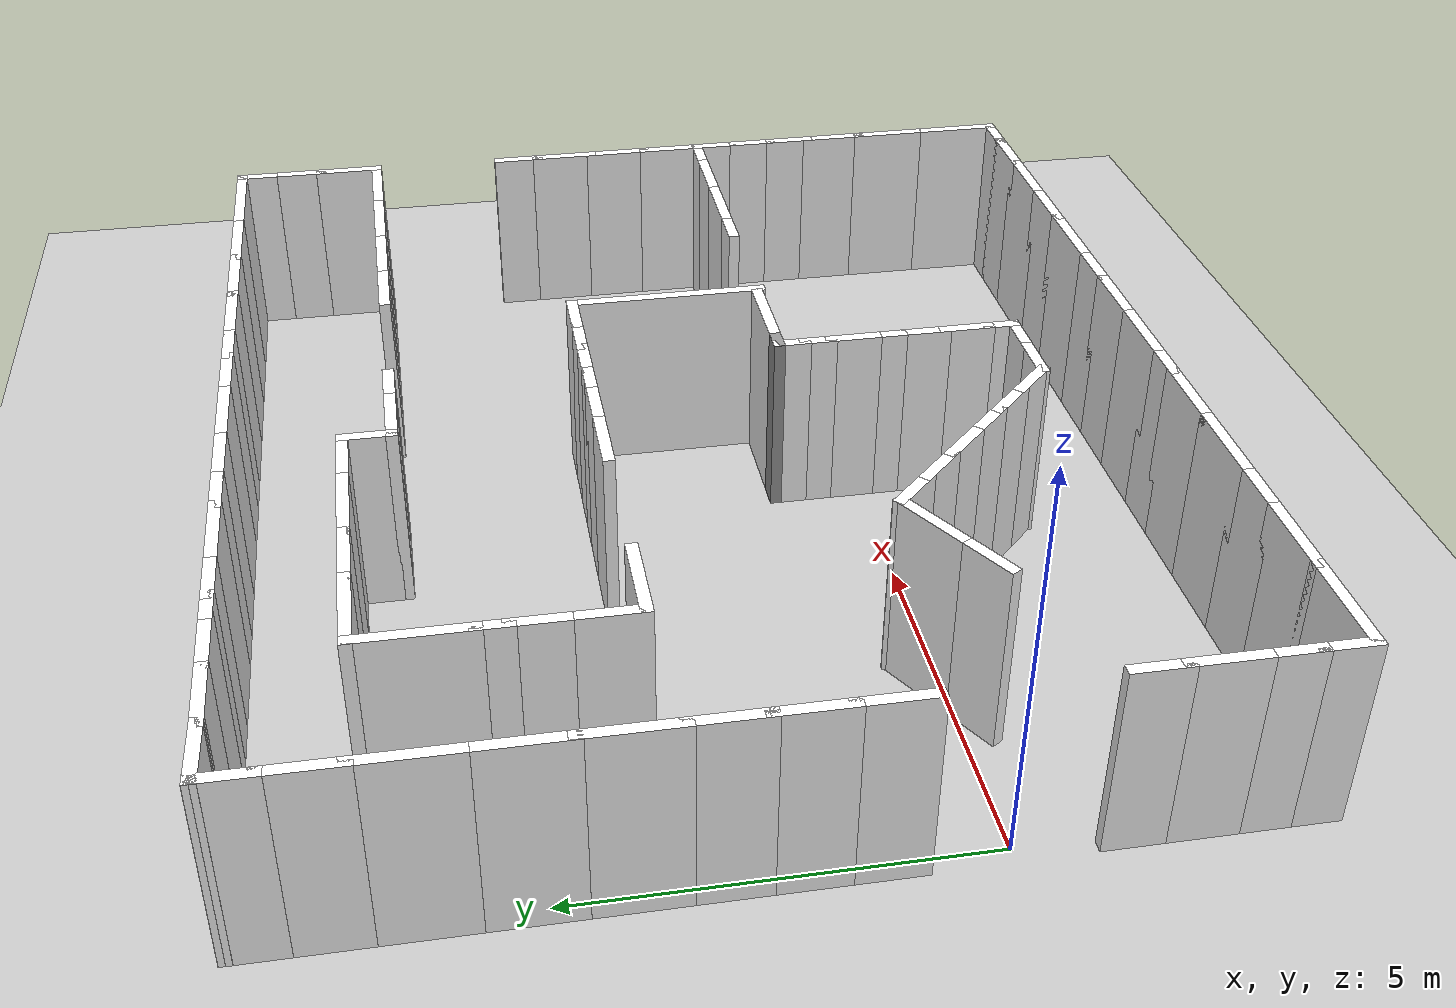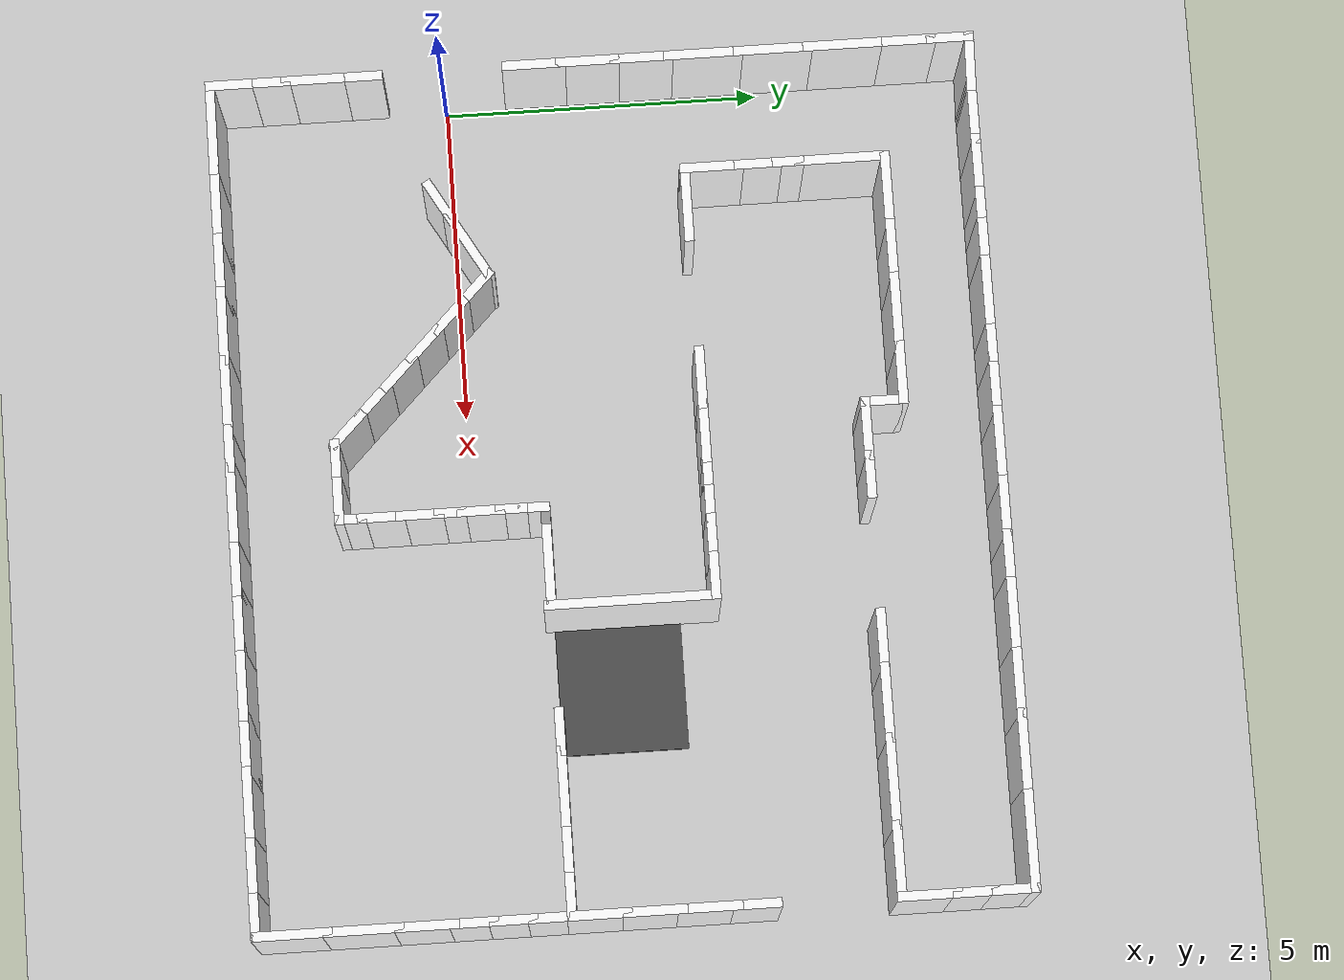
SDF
<sdf version="1.6">
 <world name="default">
  <model name="obstacles">
   <pose>6.59109 2.33085 0 0 -0 0</pose>
   <link name="Wall_11">
    <collision name="Wall_11_Collision">
     <geometry><box><size>0.75 0.15 2.5</size></box></geometry>
     <pose>0 0 1.25 0 -0 0</pose>
    </collision>
    <visual name="Wall_11_Visual">
     <pose>0 0 1.25 0 -0 0</pose>
     <geometry><box><size>0.75 0.15 2.5</size></box></geometry>
     <material>
      <script><uri>file://media/materials/scripts/gazebo.material</uri><name>Gazebo/Texture1</name></script>
      <ambient>1 1 1 1</ambient>
     </material>
    </visual>
    <pose>-6.70688 -3.64234 0 0 0 -1.5708</pose>
   </link>
   <link name="Wall_12">
    <collision name="Wall_12_Collision">
     <geometry><box><size>1 0.15 2.5</size></box></geometry>
     <pose>0 0 1.25 0 -0 0</pose>
    </collision>
    <visual name="Wall_12_Visual">
     <pose>0 0 1.25 0 -0 0</pose>
     <geometry><box><size>1 0.15 2.5</size></box></geometry>
     <material>
      <script><uri>file://media/materials/scripts/gazebo.material</uri><name>Gazebo/Texture2</name></script>
      <ambient>1 1 1 1</ambient>
     </material>
    </visual>
    <pose>-6.70688 -4.36734 0 0 0 -1.5708</pose>
   </link>
   <link name="Wall_13">
    <collision name="Wall_13_Collision">
     <geometry><box><size>0.75 0.15 2.5</size></box></geometry>
     <pose>0 0 1.25 0 -0 0</pose>
    </collision>
    <visual name="Wall_13_Visual">
     <pose>0 0 1.25 0 -0 0</pose>
     <geometry><box><size>0.75 0.15 2.5</size></box></geometry>
     <material>
      <script><uri>file://media/materials/scripts/gazebo.material</uri><name>Gazebo/Texture3</name></script>
      <ambient>1 1 1 1</ambient>
     </material>
    </visual>
    <pose>-6.70688 -5.09234 0 0 0 -1.5708</pose>
   </link>
   <link name="Wall_14">
    <collision name="Wall_14_Collision">
     <geometry><box><size>0.75 0.15 2.5</size></box></geometry>
     <pose>0 0 1.25 0 -0 0</pose>
    </collision>
    <visual name="Wall_14_Visual">
     <pose>0 0 1.25 0 -0 0</pose>
     <geometry><box><size>0.75 0.15 2.5</size></box></geometry>
     <material>
      <script><uri>file://media/materials/scripts/gazebo.material</uri><name>Gazebo/Texture4</name></script>
      <ambient>1 1 1 1</ambient>
     </material>
    </visual>
    <pose>-6.70688 -5.69234 0 0 0 -1.5708</pose>
   </link>
   <link name="Wall_15">
    <collision name="Wall_15_Collision">
     <geometry><box><size>1.5 0.15 2.5</size></box></geometry>
     <pose>0 0 1.25 0 -0 0</pose>
    </collision>
    <visual name="Wall_15_Visual">
     <pose>0 0 1.25 0 -0 0</pose>
     <geometry><box><size>1.5 0.15 2.5</size></box></geometry>
     <material>
      <script><uri>file://media/materials/scripts/gazebo.material</uri><name>Gazebo/Texture5</name></script>
      <ambient>1 1 1 1</ambient>
     </material>
    </visual>
    <pose>-6.03188 -5.99234 0 0 -0 0</pose>
   </link>
   <link name="Wall_16">
    <collision name="Wall_16_Collision">
     <geometry><box><size>1.25 0.15 2.5</size></box></geometry>
     <pose>0 0 1.25 0 -0 0</pose>
    </collision>
    <visual name="Wall_16_Visual">
     <pose>0 0 1.25 0 -0 0</pose>
     <geometry><box><size>1.25 0.15 2.5</size></box></geometry>
     <material>
      <script><uri>file://media/materials/scripts/gazebo.material</uri><name>Gazebo/Texture6</name></script>
      <ambient>1 1 1 1</ambient>
     </material>
    </visual>
    <pose>-4.80688 -5.99234 0 0 -0 0</pose>
   </link>
   <link name="Wall_17">
    <collision name="Wall_17_Collision">
     <geometry><box><size>1 0.15 2.5</size></box></geometry>
     <pose>0 0 1.25 0 -0 0</pose>
    </collision>
    <visual name="Wall_17_Visual">
     <pose>0 0 1.25 0 -0 0</pose>
     <geometry><box><size>1 0.15 2.5</size></box></geometry>
     <material>
      <script><uri>file://media/materials/scripts/gazebo.material</uri><name>Gazebo/Texture7</name></script>
      <ambient>1 1 1 1</ambient>
     </material>
    </visual>
    <pose>-3.83188 -5.99234 0 0 -0 0</pose>
   </link>
   <link name="Wall_18">
    <collision name="Wall_18_Collision">
     <geometry><box><size>1.25 0.15 2.5</size></box></geometry>
     <pose>0 0 1.25 0 -0 0</pose>
    </collision>
    <visual name="Wall_18_Visual">
     <pose>0 0 1.25 0 -0 0</pose>
     <geometry><box><size>1.25 0.15 2.5</size></box></geometry>
     <material>
      <script><uri>file://media/materials/scripts/gazebo.material</uri><name>Gazebo/Texture8</name></script>
      <ambient>1 1 1 1</ambient>
     </material>
    </visual>
    <pose>-2.85688 -5.99234 0 0 -0 0</pose>
   </link>
   <link name="Wall_19">
    <collision name="Wall_19_Collision">
     <geometry><box><size>1.25 0.15 2.5</size></box></geometry>
     <pose>0 0 1.25 0 -0 0</pose>
    </collision>
    <visual name="Wall_19_Visual">
     <pose>0 0 1.25 0 -0 0</pose>
     <geometry><box><size>1.25 0.15 2.5</size></box></geometry>
     <material>
      <script><uri>file://media/materials/scripts/gazebo.material</uri><name>Gazebo/Texture9</name></script>
      <ambient>1 1 1 1</ambient>
     </material>
    </visual>
    <pose>-1.75688 -5.99234 0 0 -0 0</pose>
   </link>
   <link name="Wall_2">
    <collision name="Wall_2_Collision">
     <geometry><box><size>0.75 0.15 2.5</size></box></geometry>
     <pose>0 0 1.25 0 -0 0</pose>
    </collision>
    <visual name="Wall_2_Visual">
     <pose>0 0 1.25 0 -0 0</pose>
     <geometry><box><size>0.75 0.15 2.5</size></box></geometry>
     <material>
      <script><uri>file://media/materials/scripts/gazebo.material</uri><name>Gazebo/Texture10</name></script>
      <ambient>1 1 1 1</ambient>
     </material>
    </visual>
    <pose>-6.72699 5.69035 0 0 0 -1.5708</pose>
   </link>
   <link name="Wall_20">
    <collision name="Wall_20_Collision">
     <geometry><box><size>0.75 0.15 2.5</size></box></geometry>
     <pose>0 0 1.25 0 -0 0</pose>
    </collision>
    <visual name="Wall_20_Visual">
     <pose>0 0 1.25 0 -0 0</pose>
     <geometry><box><size>0.75 0.15 2.5</size></box></geometry>
     <material>
      <script><uri>file://media/materials/scripts/gazebo.material</uri><name>Gazebo/Texture11</name></script>
      <ambient>1 1 1 1</ambient>
     </material>
    </visual>
    <pose>-0.90688 -5.99234 0 0 -0 0</pose>
   </link>
   <link name="Wall_202">
    <collision name="Wall_202_Collision">
     <geometry><box><size>1.25 0.15 2.5</size></box></geometry>
     <pose>0 0 1.25 0 -0 0</pose>
    </collision>
    <visual name="Wall_202_Visual">
     <pose>0 0 1.25 0 -0 0</pose>
     <geometry><box><size>1.25 0.15 2.5</size></box></geometry>
     <material>
      <script><uri>file://media/materials/scripts/gazebo.material</uri><name>Gazebo/Texture12</name></script>
      <ambient>1 1 1 1</ambient>
     </material>
    </visual>
    <pose>6.17899 3.91866 0 0 -0 3.14159</pose>
   </link>
   <link name="Wall_203">
    <collision name="Wall_203_Collision">
     <geometry><box><size>1.5 0.15 2.5</size></box></geometry>
     <pose>0 0 1.25 0 -0 0</pose>
    </collision>
    <visual name="Wall_203_Visual">
     <pose>0 0 1.25 0 -0 0</pose>
     <geometry><box><size>1.5 0.15 2.5</size></box></geometry>
     <material>
      <script><uri>file://media/materials/scripts/gazebo.material</uri><name>Gazebo/Texture13</name></script>
      <ambient>1 1 1 1</ambient>
     </material>
    </visual>
    <pose>4.95399 3.91866 0 0 -0 3.14159</pose>
   </link>
   <link name="Wall_204">
    <collision name="Wall_204_Collision">
     <geometry><box><size>1.25 0.15 2.5</size></box></geometry>
     <pose>0 0 1.25 0 -0 0</pose>
    </collision>
    <visual name="Wall_204_Visual">
     <pose>0 0 1.25 0 -0 0</pose>
     <geometry><box><size>1.25 0.15 2.5</size></box></geometry>
     <material>
      <script><uri>file://media/materials/scripts/gazebo.material</uri><name>Gazebo/Texture14</name></script>
      <ambient>1 1 1 1</ambient>
     </material>
    </visual>
    <pose>3.72899 3.91866 0 0 -0 3.14159</pose>
   </link>
   <link name="Wall_205">
    <collision name="Wall_205_Collision">
     <geometry><box><size>1 0.15 2.5</size></box></geometry>
     <pose>0 0 1.25 0 -0 0</pose>
    </collision>
    <visual name="Wall_205_Visual">
     <pose>0 0 1.25 0 -0 0</pose>
     <geometry><box><size>1 0.15 2.5</size></box></geometry>
     <material>
      <script><uri>file://media/materials/scripts/gazebo.material</uri><name>Gazebo/Texture15</name></script>
      <ambient>1 1 1 1</ambient>
     </material>
    </visual>
    <pose>2.75399 3.91866 0 0 -0 3.14159</pose>
   </link>
   <link name="Wall_207">
    <collision name="Wall_207_Collision">
     <geometry><box><size>0.75 0.15 2.5</size></box></geometry>
     <pose>0 0 1.25 0 -0 0</pose>
    </collision>
    <visual name="Wall_207_Visual">
     <pose>0 0 1.25 0 -0 0</pose>
     <geometry><box><size>0.75 0.15 2.5</size></box></geometry>
     <material>
      <script><uri>file://media/materials/scripts/gazebo.material</uri><name>Gazebo/Texture16</name></script>
      <ambient>1 1 1 1</ambient>
     </material>
    </visual>
    <pose>0.155851 3.92543 0 0 -0 3.14159</pose>
   </link>
   <link name="Wall_208">
    <collision name="Wall_208_Collision">
     <geometry><box><size>1 0.15 2.5</size></box></geometry>
     <pose>0 0 1.25 0 -0 0</pose>
    </collision>
    <visual name="Wall_208_Visual">
     <pose>0 0 1.25 0 -0 0</pose>
     <geometry><box><size>1 0.15 2.5</size></box></geometry>
     <material>
      <script><uri>file://media/materials/scripts/gazebo.material</uri><name>Gazebo/Texture17</name></script>
      <ambient>1 1 1 1</ambient>
     </material>
    </visual>
    <pose>-0.569149 3.92543 0 0 -0 3.14159</pose>
   </link>
   <link name="Wall_209">
    <collision name="Wall_209_Collision">
     <geometry><box><size>0.75 0.15 2.5</size></box></geometry>
     <pose>0 0 1.25 0 -0 0</pose>
    </collision>
    <visual name="Wall_209_Visual">
     <pose>0 0 1.25 0 -0 0</pose>
     <geometry><box><size>0.75 0.15 2.5</size></box></geometry>
     <material>
      <script><uri>file://media/materials/scripts/gazebo.material</uri><name>Gazebo/Texture18</name></script>
      <ambient>1 1 1 1</ambient>
     </material>
    </visual>
    <pose>-0.994149 4.22543 0 0 -0 1.5708</pose>
   </link>
   <link name="Wall_21">
    <collision name="Wall_21_Collision">
     <geometry><box><size>1.25 0.15 2.5</size></box></geometry>
     <pose>0 0 1.25 0 -0 0</pose>
    </collision>
    <visual name="Wall_21_Visual">
     <pose>0 0 1.25 0 -0 0</pose>
     <geometry><box><size>1.25 0.15 2.5</size></box></geometry>
     <material>
      <script><uri>file://media/materials/scripts/gazebo.material</uri><name>Gazebo/Texture19</name></script>
      <ambient>1 1 1 1</ambient>
     </material>
    </visual>
    <pose>-0.05688 -5.99234 0 0 -0 0</pose>
   </link>
   <link name="Wall_210">
    <collision name="Wall_210_Collision">
     <geometry><box><size>1 0.15 2.5</size></box></geometry>
     <pose>0 0 1.25 0 -0 0</pose>
    </collision>
    <visual name="Wall_210_Visual">
     <pose>0 0 1.25 0 -0 0</pose>
     <geometry><box><size>1 0.15 2.5</size></box></geometry>
     <material>
      <script><uri>file://media/materials/scripts/gazebo.material</uri><name>Gazebo/Texture20</name></script>
      <ambient>1 1 1 1</ambient>
     </material>
    </visual>
    <pose>-1.41915 4.52543 0 0 -0 3.14159</pose>
   </link>
   <link name="Wall_211">
    <collision name="Wall_211_Collision">
     <geometry><box><size>1.25 0.15 2.5</size></box></geometry>
     <pose>0 0 1.25 0 -0 0</pose>
    </collision>
    <visual name="Wall_211_Visual">
     <pose>0 0 1.25 0 -0 0</pose>
     <geometry><box><size>1.25 0.15 2.5</size></box></geometry>
     <material>
      <script><uri>file://media/materials/scripts/gazebo.material</uri><name>Gazebo/Texture21</name></script>
      <ambient>1 1 1 1</ambient>
     </material>
    </visual>
    <pose>-2.39415 4.52543 0 0 -0 3.14159</pose>
   </link>
   <link name="Wall_212">
    <collision name="Wall_212_Collision">
     <geometry><box><size>1 0.15 2.5</size></box></geometry>
     <pose>0 0 1.25 0 -0 0</pose>
    </collision>
    <visual name="Wall_212_Visual">
     <pose>0 0 1.25 0 -0 0</pose>
     <geometry><box><size>1 0.15 2.5</size></box></geometry>
     <material>
      <script><uri>file://media/materials/scripts/gazebo.material</uri><name>Gazebo/Texture22</name></script>
      <ambient>1 1 1 1</ambient>
     </material>
    </visual>
    <pose>-3.36915 4.52543 0 0 -0 3.14159</pose>
   </link>
   <link name="Wall_213">
    <collision name="Wall_213_Collision">
     <geometry><box><size>1.25 0.15 2.5</size></box></geometry>
     <pose>0 0 1.25 0 -0 0</pose>
    </collision>
    <visual name="Wall_213_Visual">
     <pose>0 0 1.25 0 -0 0</pose>
     <geometry><box><size>1.25 0.15 2.5</size></box></geometry>
     <material>
      <script><uri>file://media/materials/scripts/gazebo.material</uri><name>Gazebo/Texture23</name></script>
      <ambient>1 1 1 1</ambient>
     </material>
    </visual>
    <pose>-4.34415 4.52543 0 0 -0 3.14159</pose>
   </link>
   <link name="Wall_214">
    <collision name="Wall_214_Collision">
     <geometry><box><size>1.5 0.15 2.5</size></box></geometry>
     <pose>0 0 1.25 0 -0 0</pose>
    </collision>
    <visual name="Wall_214_Visual">
     <pose>0 0 1.25 0 -0 0</pose>
     <geometry><box><size>1.5 0.15 2.5</size></box></geometry>
     <material>
      <script><uri>file://media/materials/scripts/gazebo.material</uri><name>Gazebo/Texture24</name></script>
      <ambient>1 1 1 1</ambient>
     </material>
    </visual>
    <pose>-4.89415 3.85043 0 0 0 -1.5708</pose>
   </link>
   <link name="Wall_215">
    <collision name="Wall_215_Collision">
     <geometry><box><size>0.5 0.15 2.5</size></box></geometry>
     <pose>0 0 1.25 0 -0 0</pose>
    </collision>
    <visual name="Wall_215_Visual">
     <pose>0 0 1.25 0 -0 0</pose>
     <geometry><box><size>0.5 0.15 2.5</size></box></geometry>
     <material>
      <script><uri>file://media/materials/scripts/gazebo.material</uri><name>Gazebo/Texture25</name></script>
      <ambient>1 1 1 1</ambient>
     </material>
    </visual>
    <pose>-4.89415 3.00043 0 0 0 -1.5708</pose>
   </link>
   <link name="Wall_216">
    <collision name="Wall_216_Collision">
     <geometry><box><size>0.75 0.15 2.5</size></box></geometry>
     <pose>0 0 1.25 0 -0 0</pose>
    </collision>
    <visual name="Wall_216_Visual">
     <pose>0 0 1.25 0 -0 0</pose>
     <geometry><box><size>0.75 0.15 2.5</size></box></geometry>
     <material>
      <script><uri>file://media/materials/scripts/gazebo.material</uri><name>Gazebo/Texture26</name></script>
      <ambient>1 1 1 1</ambient>
     </material>
    </visual>
    <pose>-4.89415 2.52543 0 0 0 -1.5708</pose>
   </link>
   <link name="Wall_217">
    <collision name="Wall_217_Collision">
     <geometry><box><size>1 0.15 2.5</size></box></geometry>
     <pose>0 0 1.25 0 -0 0</pose>
    </collision>
    <visual name="Wall_217_Visual">
     <pose>0 0 1.25 0 -0 0</pose>
     <geometry><box><size>1 0.15 2.5</size></box></geometry>
     <material>
      <script><uri>file://media/materials/scripts/gazebo.material</uri><name>Gazebo/Texture27</name></script>
      <ambient>1 1 1 1</ambient>
     </material>
    </visual>
    <pose>-4.89415 1.80043 0 0 0 -1.5708</pose>
   </link>
   <link name="Wall_218">
    <collision name="Wall_218_Collision">
     <geometry><box><size>1.25 0.15 2.5</size></box></geometry>
     <pose>0 0 1.25 0 -0 0</pose>
    </collision>
    <visual name="Wall_218_Visual">
     <pose>0 0 1.25 0 -0 0</pose>
     <geometry><box><size>1.25 0.15 2.5</size></box></geometry>
     <material>
      <script><uri>file://media/materials/scripts/gazebo.material</uri><name>Gazebo/Texture28</name></script>
      <ambient>1 1 1 1</ambient>
     </material>
    </visual>
    <pose>-4.34415 1.37543 0 0 -0 0</pose>
   </link>
   <link name="Wall_22">
    <collision name="Wall_22_Collision">
     <geometry><box><size>1 0.15 2.5</size></box></geometry>
     <pose>0 0 1.25 0 -0 0</pose>
    </collision>
    <visual name="Wall_22_Visual">
     <pose>0 0 1.25 0 -0 0</pose>
     <geometry><box><size>1 0.15 2.5</size></box></geometry>
     <material>
      <script><uri>file://media/materials/scripts/gazebo.material</uri><name>Gazebo/Texture29</name></script>
      <ambient>1 1 1 1</ambient>
     </material>
    </visual>
    <pose>0.91812 -5.99234 0 0 -0 0</pose>
   </link>
   <link name="Wall_220">
    <collision name="Wall_220_Collision">
     <geometry><box><size>1 0.15 2.5</size></box></geometry>
     <pose>0 0 1.25 0 -0 0</pose>
    </collision>
    <visual name="Wall_220_Visual">
     <pose>0 0 1.25 0 -0 0</pose>
     <geometry><box><size>1 0.15 2.5</size></box></geometry>
     <material>
      <script><uri>file://media/materials/scripts/gazebo.material</uri><name>Gazebo/Texture30</name></script>
      <ambient>1 1 1 1</ambient>
     </material>
    </visual>
    <pose>-1.54786 1.4042 0 0 -0 0</pose>
   </link>
   <link name="Wall_221">
    <collision name="Wall_221_Collision">
     <geometry><box><size>1 0.15 2.5</size></box></geometry>
     <pose>0 0 1.25 0 -0 0</pose>
    </collision>
    <visual name="Wall_221_Visual">
     <pose>0 0 1.25 0 -0 0</pose>
     <geometry><box><size>1 0.15 2.5</size></box></geometry>
     <material>
      <script><uri>file://media/materials/scripts/gazebo.material</uri><name>Gazebo/Texture31</name></script>
      <ambient>1 1 1 1</ambient>
     </material>
    </visual>
    <pose>-0.697863 1.4042 0 0 -0 0</pose>
   </link>
   <link name="Wall_222">
    <collision name="Wall_222_Collision">
     <geometry><box><size>0.5 0.15 2.5</size></box></geometry>
     <pose>0 0 1.25 0 -0 0</pose>
    </collision>
    <visual name="Wall_222_Visual">
     <pose>0 0 1.25 0 -0 0</pose>
     <geometry><box><size>0.5 0.15 2.5</size></box></geometry>
     <material>
      <script><uri>file://media/materials/scripts/gazebo.material</uri><name>Gazebo/Texture32</name></script>
      <ambient>1 1 1 1</ambient>
     </material>
    </visual>
    <pose>-0.097863 1.4042 0 0 -0 0</pose>
   </link>
   <link name="Wall_223">
    <collision name="Wall_223_Collision">
     <geometry><box><size>0.75 0.15 2.5</size></box></geometry>
     <pose>0 0 1.25 0 -0 0</pose>
    </collision>
    <visual name="Wall_223_Visual">
     <pose>0 0 1.25 0 -0 0</pose>
     <geometry><box><size>0.75 0.15 2.5</size></box></geometry>
     <material>
      <script><uri>file://media/materials/scripts/gazebo.material</uri><name>Gazebo/Texture33</name></script>
      <ambient>1 1 1 1</ambient>
     </material>
    </visual>
    <pose>0.377137 1.4042 0 0 -0 0</pose>
   </link>
   <link name="Wall_224">
    <collision name="Wall_224_Collision">
     <geometry><box><size>0.75 0.15 2.5</size></box></geometry>
     <pose>0 0 1.25 0 -0 0</pose>
    </collision>
    <visual name="Wall_224_Visual">
     <pose>0 0 1.25 0 -0 0</pose>
     <geometry><box><size>0.75 0.15 2.5</size></box></geometry>
     <material>
      <script><uri>file://media/materials/scripts/gazebo.material</uri><name>Gazebo/Texture34</name></script>
      <ambient>1 1 1 1</ambient>
     </material>
    </visual>
    <pose>0.977137 1.4042 0 0 -0 0</pose>
   </link>
   <link name="Wall_225">
    <collision name="Wall_225_Collision">
     <geometry><box><size>0.75 0.15 2.5</size></box></geometry>
     <pose>0 0 1.25 0 -0 0</pose>
    </collision>
    <visual name="Wall_225_Visual">
     <pose>0 0 1.25 0 -0 0</pose>
     <geometry><box><size>0.75 0.15 2.5</size></box></geometry>
     <material>
      <script><uri>file://media/materials/scripts/gazebo.material</uri><name>Gazebo/Texture35</name></script>
      <ambient>1 1 1 1</ambient>
     </material>
    </visual>
    <pose>1.57714 1.4042 0 0 -0 0</pose>
   </link>
   <link name="Wall_226">
    <collision name="Wall_226_Collision">
     <geometry><box><size>2.75 0.15 2.5</size></box></geometry>
     <pose>0 0 1.25 0 -0 0</pose>
    </collision>
    <visual name="Wall_226_Visual">
     <pose>0 0 1.25 0 -0 0</pose>
     <geometry><box><size>2.75 0.15 2.5</size></box></geometry>
     <material>
      <script><uri>file://media/materials/scripts/gazebo.material</uri><name>Gazebo/Texture36</name></script>
      <ambient>1 1 1 1</ambient>
     </material>
    </visual>
    <pose>1.87714 0.104195 0 0 0 -1.5708</pose>
   </link>
   <link name="Wall_228">
    <collision name="Wall_228_Collision">
     <geometry><box><size>0.75 0.15 2.5</size></box></geometry>
     <pose>0 0 1.25 0 -0 0</pose>
    </collision>
    <visual name="Wall_228_Visual">
     <pose>0 0 1.25 0 -0 0</pose>
     <geometry><box><size>0.75 0.15 2.5</size></box></geometry>
     <material>
      <script><uri>file://media/materials/scripts/gazebo.material</uri><name>Gazebo/Texture37</name></script>
      <ambient>1 1 1 1</ambient>
     </material>
    </visual>
    <pose>0.031047 -4.34997 0 0 -0 3.14159</pose>
   </link>
   <link name="Wall_229">
    <collision name="Wall_229_Collision">
     <geometry><box><size>0.75 0.15 2.5</size></box></geometry>
     <pose>0 0 1.25 0 -0 0</pose>
    </collision>
    <visual name="Wall_229_Visual">
     <pose>0 0 1.25 0 -0 0</pose>
     <geometry><box><size>0.75 0.15 2.5</size></box></geometry>
     <material>
      <script><uri>file://media/materials/scripts/gazebo.material</uri><name>Gazebo/Texture38</name></script>
      <ambient>1 1 1 1</ambient>
     </material>
    </visual>
    <pose>-0.568953 -4.34997 0 0 -0 3.14159</pose>
   </link>
   <link name="Wall_23">
    <collision name="Wall_23_Collision">
     <geometry><box><size>1 0.15 2.5</size></box></geometry>
     <pose>0 0 1.25 0 -0 0</pose>
    </collision>
    <visual name="Wall_23_Visual">
     <pose>0 0 1.25 0 -0 0</pose>
     <geometry><box><size>1 0.15 2.5</size></box></geometry>
     <material>
      <script><uri>file://media/materials/scripts/gazebo.material</uri><name>Gazebo/Texture39</name></script>
      <ambient>1 1 1 1</ambient>
     </material>
    </visual>
    <pose>1.76812 -5.99234 0 0 -0 0</pose>
   </link>
   <link name="Wall_233">
    <collision name="Wall_233_Collision">
     <geometry><box><size>0.75 0.15 2.5</size></box></geometry>
     <pose>0 0 1.25 0 -0 0</pose>
    </collision>
    <visual name="Wall_233_Visual">
     <pose>0 0 1.25 0 -0 0</pose>
     <geometry><box><size>0.75 0.15 2.5</size></box></geometry>
     <material>
      <script><uri>file://media/materials/scripts/gazebo.material</uri><name>Gazebo/Texture40</name></script>
      <ambient>1 1 1 1</ambient>
     </material>
    </visual>
    <pose>-1.08109 -4.13783 0 0 -0 2.35619</pose>
   </link>
   <link name="Wall_234">
    <collision name="Wall_234_Collision">
     <geometry><box><size>0.75 0.15 2.5</size></box></geometry>
     <pose>0 0 1.25 0 -0 0</pose>
    </collision>
    <visual name="Wall_234_Visual">
     <pose>0 0 1.25 0 -0 0</pose>
     <geometry><box><size>0.75 0.15 2.5</size></box></geometry>
     <material>
      <script><uri>file://media/materials/scripts/gazebo.material</uri><name>Gazebo/Texture41</name></script>
      <ambient>1 1 1 1</ambient>
     </material>
    </visual>
    <pose>-1.50535 -3.71357 0 0 -0 2.35619</pose>
   </link>
   <link name="Wall_235">
    <collision name="Wall_235_Collision">
     <geometry><box><size>0.75 0.15 2.5</size></box></geometry>
     <pose>0 0 1.25 0 -0 0</pose>
    </collision>
    <visual name="Wall_235_Visual">
     <pose>0 0 1.25 0 -0 0</pose>
     <geometry><box><size>0.75 0.15 2.5</size></box></geometry>
     <material>
      <script><uri>file://media/materials/scripts/gazebo.material</uri><name>Gazebo/Texture42</name></script>
      <ambient>1 1 1 1</ambient>
     </material>
    </visual>
    <pose>-1.92961 -3.28931 0 0 -0 2.35619</pose>
   </link>
   <link name="Wall_236">
    <collision name="Wall_236_Collision">
     <geometry><box><size>0.75 0.15 2.5</size></box></geometry>
     <pose>0 0 1.25 0 -0 0</pose>
    </collision>
    <visual name="Wall_236_Visual">
     <pose>0 0 1.25 0 -0 0</pose>
     <geometry><box><size>0.75 0.15 2.5</size></box></geometry>
     <material>
      <script><uri>file://media/materials/scripts/gazebo.material</uri><name>Gazebo/Texture43</name></script>
      <ambient>1 1 1 1</ambient>
     </material>
    </visual>
    <pose>-2.35388 -2.86504 0 0 -0 2.35619</pose>
   </link>
   <link name="Wall_237">
    <collision name="Wall_237_Collision">
     <geometry><box><size>0.75 0.15 2.5</size></box></geometry>
     <pose>0 0 1.25 0 -0 0</pose>
    </collision>
    <visual name="Wall_237_Visual">
     <pose>0 0 1.25 0 -0 0</pose>
     <geometry><box><size>0.75 0.15 2.5</size></box></geometry>
     <material>
      <script><uri>file://media/materials/scripts/gazebo.material</uri><name>Gazebo/Texture1</name></script>
      <ambient>1 1 1 1</ambient>
     </material>
    </visual>
    <pose>-2.77814 -2.44078 0 0 -0 2.35619</pose>
   </link>
   <link name="Wall_238">
    <collision name="Wall_238_Collision">
     <geometry><box><size>0.75 0.15 2.5</size></box></geometry>
     <pose>0 0 1.25 0 -0 0</pose>
    </collision>
    <visual name="Wall_238_Visual">
     <pose>0 0 1.25 0 -0 0</pose>
     <geometry><box><size>0.75 0.15 2.5</size></box></geometry>
     <material>
      <script><uri>file://media/materials/scripts/gazebo.material</uri><name>Gazebo/Texture2</name></script>
      <ambient>1 1 1 1</ambient>
     </material>
    </visual>
    <pose>-3.20241 -2.01651 0 0 -0 2.35619</pose>
   </link>
   <link name="Wall_239">
    <collision name="Wall_239_Collision">
     <geometry><box><size>1.25 0.15 2.5</size></box></geometry>
     <pose>0 0 1.25 0 -0 0</pose>
    </collision>
    <visual name="Wall_239_Visual">
     <pose>0 0 1.25 0 -0 0</pose>
     <geometry><box><size>1.25 0.15 2.5</size></box></geometry>
     <material>
      <script><uri>file://media/materials/scripts/gazebo.material</uri><name>Gazebo/Texture3</name></script>
      <ambient>1 1 1 1</ambient>
     </material>
    </visual>
    <pose>-3.89085 -2.07938 0 0 0 -2.61799</pose>
   </link>
   <link name="Wall_24">
    <collision name="Wall_24_Collision">
     <geometry><box><size>1.25 0.15 2.5</size></box></geometry>
     <pose>0 0 1.25 0 -0 0</pose>
    </collision>
    <visual name="Wall_24_Visual">
     <pose>0 0 1.25 0 -0 0</pose>
     <geometry><box><size>1.25 0.15 2.5</size></box></geometry>
     <material>
      <script><uri>file://media/materials/scripts/gazebo.material</uri><name>Gazebo/Texture4</name></script>
      <ambient>1 1 1 1</ambient>
     </material>
    </visual>
    <pose>2.74312 -5.99234 0 0 -0 0</pose>
   </link>
   <link name="Wall_240">
    <collision name="Wall_240_Collision">
     <geometry><box><size>0.75 0.15 2.5</size></box></geometry>
     <pose>0 0 1.25 0 -0 0</pose>
    </collision>
    <visual name="Wall_240_Visual">
     <pose>0 0 1.25 0 -0 0</pose>
     <geometry><box><size>0.75 0.15 2.5</size></box></geometry>
     <material>
      <script><uri>file://media/materials/scripts/gazebo.material</uri><name>Gazebo/Texture5</name></script>
      <ambient>1 1 1 1</ambient>
     </material>
    </visual>
    <pose>-4.62697 -2.50438 0 0 0 -2.61799</pose>
   </link>
   <link name="Wall_25">
    <collision name="Wall_25_Collision">
     <geometry><box><size>1 0.15 2.5</size></box></geometry>
     <pose>0 0 1.25 0 -0 0</pose>
    </collision>
    <visual name="Wall_25_Visual">
     <pose>0 0 1.25 0 -0 0</pose>
     <geometry><box><size>1 0.15 2.5</size></box></geometry>
     <material>
      <script><uri>file://media/materials/scripts/gazebo.material</uri><name>Gazebo/Texture6</name></script>
      <ambient>1 1 1 1</ambient>
     </material>
    </visual>
    <pose>3.71812 -5.99234 0 0 -0 0</pose>
   </link>
   <link name="Wall_26">
    <collision name="Wall_26_Collision">
     <geometry><box><size>1.25 0.15 2.5</size></box></geometry>
     <pose>0 0 1.25 0 -0 0</pose>
    </collision>
    <visual name="Wall_26_Visual">
     <pose>0 0 1.25 0 -0 0</pose>
     <geometry><box><size>1.25 0.15 2.5</size></box></geometry>
     <material>
      <script><uri>file://media/materials/scripts/gazebo.material</uri><name>Gazebo/Texture7</name></script>
      <ambient>1 1 1 1</ambient>
     </material>
    </visual>
    <pose>4.69312 -5.99234 0 0 -0 0</pose>
   </link>
   <link name="Wall_27">
    <collision name="Wall_27_Collision">
     <geometry><box><size>1 0.15 2.5</size></box></geometry>
     <pose>0 0 1.25 0 -0 0</pose>
    </collision>
    <visual name="Wall_27_Visual">
     <pose>0 0 1.25 0 -0 0</pose>
     <geometry><box><size>1 0.15 2.5</size></box></geometry>
     <material>
      <script><uri>file://media/materials/scripts/gazebo.material</uri><name>Gazebo/Texture8</name></script>
      <ambient>1 1 1 1</ambient>
     </material>
    </visual>
    <pose>5.66812 -5.99234 0 0 -0 0</pose>
   </link>
   <link name="Wall_28">
    <collision name="Wall_28_Collision">
     <geometry><box><size>0.75 0.15 2.5</size></box></geometry>
     <pose>0 0 1.25 0 -0 0</pose>
    </collision>
    <visual name="Wall_28_Visual">
     <pose>0 0 1.25 0 -0 0</pose>
     <geometry><box><size>0.75 0.15 2.5</size></box></geometry>
     <material>
      <script><uri>file://media/materials/scripts/gazebo.material</uri><name>Gazebo/Texture9</name></script>
      <ambient>1 1 1 1</ambient>
     </material>
    </visual>
    <pose>6.39312 -5.99234 0 0 -0 0</pose>
   </link>
   <link name="Wall_29">
    <collision name="Wall_29_Collision">
     <geometry><box><size>1.25 0.15 2.5</size></box></geometry>
     <pose>0 0 1.25 0 -0 0</pose>
    </collision>
    <visual name="Wall_29_Visual">
     <pose>0 0 1.25 0 -0 0</pose>
     <geometry><box><size>1.25 0.15 2.5</size></box></geometry>
     <material>
      <script><uri>file://media/materials/scripts/gazebo.material</uri><name>Gazebo/Texture10</name></script>
      <ambient>1 1 1 1</ambient>
     </material>
    </visual>
    <pose>6.69312 -5.44234 0 0 -0 1.5708</pose>
   </link>
   <link name="Wall_3">
    <collision name="Wall_3_Collision">
     <geometry><box><size>1 0.15 2.5</size></box></geometry>
     <pose>0 0 1.25 0 -0 0</pose>
    </collision>
    <visual name="Wall_3_Visual">
     <pose>0 0 1.25 0 -0 0</pose>
     <geometry><box><size>1 0.15 2.5</size></box></geometry>
     <material>
      <script><uri>file://media/materials/scripts/gazebo.material</uri><name>Gazebo/Texture11</name></script>
      <ambient>1 1 1 1</ambient>
     </material>
    </visual>
    <pose>-6.72699 4.96535 0 0 0 -1.5708</pose>
   </link>
   <link name="Wall_30">
    <collision name="Wall_30_Collision">
     <geometry><box><size>1.25 0.15 2.5</size></box></geometry>
     <pose>0 0 1.25 0 -0 0</pose>
    </collision>
    <visual name="Wall_30_Visual">
     <pose>0 0 1.25 0 -0 0</pose>
     <geometry><box><size>1.25 0.15 2.5</size></box></geometry>
     <material>
      <script><uri>file://media/materials/scripts/gazebo.material</uri><name>Gazebo/Texture12</name></script>
      <ambient>1 1 1 1</ambient>
     </material>
    </visual>
    <pose>6.69312 -4.34234 0 0 -0 1.5708</pose>
   </link>
   <link name="Wall_31">
    <collision name="Wall_31_Collision">
     <geometry><box><size>1 0.15 2.5</size></box></geometry>
     <pose>0 0 1.25 0 -0 0</pose>
    </collision>
    <visual name="Wall_31_Visual">
     <pose>0 0 1.25 0 -0 0</pose>
     <geometry><box><size>1 0.15 2.5</size></box></geometry>
     <material>
      <script><uri>file://media/materials/scripts/gazebo.material</uri><name>Gazebo/Texture13</name></script>
      <ambient>1 1 1 1</ambient>
     </material>
    </visual>
    <pose>6.69312 -3.36734 0 0 -0 1.5708</pose>
   </link>
   <link name="Wall_32">
    <collision name="Wall_32_Collision">
     <geometry><box><size>0.75 0.15 2.5</size></box></geometry>
     <pose>0 0 1.25 0 -0 0</pose>
    </collision>
    <visual name="Wall_32_Visual">
     <pose>0 0 1.25 0 -0 0</pose>
     <geometry><box><size>0.75 0.15 2.5</size></box></geometry>
     <material>
      <script><uri>file://media/materials/scripts/gazebo.material</uri><name>Gazebo/Texture14</name></script>
      <ambient>1 1 1 1</ambient>
     </material>
    </visual>
    <pose>6.69312 -2.64234 0 0 -0 1.5708</pose>
   </link>
   <link name="Wall_33">
    <collision name="Wall_33_Collision">
     <geometry><box><size>0.75 0.15 2.5</size></box></geometry>
     <pose>0 0 1.25 0 -0 0</pose>
    </collision>
    <visual name="Wall_33_Visual">
     <pose>0 0 1.25 0 -0 0</pose>
     <geometry><box><size>0.75 0.15 2.5</size></box></geometry>
     <material>
      <script><uri>file://media/materials/scripts/gazebo.material</uri><name>Gazebo/Texture15</name></script>
      <ambient>1 1 1 1</ambient>
     </material>
    </visual>
    <pose>6.69312 -2.04234 0 0 -0 1.5708</pose>
   </link>
   <link name="Wall_36">
    <collision name="Wall_36_Collision">
     <geometry><box><size>0.75 0.15 2.5</size></box></geometry>
     <pose>0 0 1.25 0 -0 0</pose>
    </collision>
    <visual name="Wall_36_Visual">
     <pose>0 0 1.25 0 -0 0</pose>
     <geometry><box><size>0.75 0.15 2.5</size></box></geometry>
     <material>
      <script><uri>file://media/materials/scripts/gazebo.material</uri><name>Gazebo/Texture16</name></script>
      <ambient>1 1 1 1</ambient>
     </material>
    </visual>
    <pose>6.69312 -1.44234 0 0 -0 1.5708</pose>
   </link>
   <link name="Wall_37">
    <collision name="Wall_37_Collision">
     <geometry><box><size>1 0.15 2.5</size></box></geometry>
     <pose>0 0 1.25 0 -0 0</pose>
    </collision>
    <visual name="Wall_37_Visual">
     <pose>0 0 1.25 0 -0 0</pose>
     <geometry><box><size>1 0.15 2.5</size></box></geometry>
     <material>
      <script><uri>file://media/materials/scripts/gazebo.material</uri><name>Gazebo/Texture17</name></script>
      <ambient>1 1 1 1</ambient>
     </material>
    </visual>
    <pose>6.69312 -0.717344 0 0 -0 1.5708</pose>
   </link>
   <link name="Wall_38">
    <collision name="Wall_38_Collision">
     <geometry><box><size>1 0.15 2.5</size></box></geometry>
     <pose>0 0 1.25 0 -0 0</pose>
    </collision>
    <visual name="Wall_38_Visual">
     <pose>0 0 1.25 0 -0 0</pose>
     <geometry><box><size>1 0.15 2.5</size></box></geometry>
     <material>
      <script><uri>file://media/materials/scripts/gazebo.material</uri><name>Gazebo/Texture18</name></script>
      <ambient>1 1 1 1</ambient>
     </material>
    </visual>
    <pose>6.69312 0.132656 0 0 -0 1.5708</pose>
   </link>
   <link name="Wall_39">
    <collision name="Wall_39_Collision">
     <geometry><box><size>1 0.15 2.5</size></box></geometry>
     <pose>0 0 1.25 0 -0 0</pose>
    </collision>
    <visual name="Wall_39_Visual">
     <pose>0 0 1.25 0 -0 0</pose>
     <geometry><box><size>1 0.15 2.5</size></box></geometry>
     <material>
      <script><uri>file://media/materials/scripts/gazebo.material</uri><name>Gazebo/Texture19</name></script>
      <ambient>1 1 1 1</ambient>
     </material>
    </visual>
    <pose>6.69312 0.982656 0 0 -0 1.5708</pose>
   </link>
   <link name="Wall_4">
    <collision name="Wall_4_Collision">
     <geometry><box><size>1.25 0.15 2.5</size></box></geometry>
     <pose>0 0 1.25 0 -0 0</pose>
    </collision>
    <visual name="Wall_4_Visual">
     <pose>0 0 1.25 0 -0 0</pose>
     <geometry><box><size>1.25 0.15 2.5</size></box></geometry>
     <material>
      <script><uri>file://media/materials/scripts/gazebo.material</uri><name>Gazebo/Texture20</name></script>
      <ambient>1 1 1 1</ambient>
     </material>
    </visual>
    <pose>-6.72699 3.99035 0 0 0 -1.5708</pose>
   </link>
   <link name="Wall_40">
    <collision name="Wall_40_Collision">
     <geometry><box><size>0.75 0.15 2.5</size></box></geometry>
     <pose>0 0 1.25 0 -0 0</pose>
    </collision>
    <visual name="Wall_40_Visual">
     <pose>0 0 1.25 0 -0 0</pose>
     <geometry><box><size>0.75 0.15 2.5</size></box></geometry>
     <material>
      <script><uri>file://media/materials/scripts/gazebo.material</uri><name>Gazebo/Texture21</name></script>
      <ambient>1 1 1 1</ambient>
     </material>
    </visual>
    <pose>6.69312 1.70766 0 0 -0 1.5708</pose>
   </link>
   <link name="Wall_42">
    <collision name="Wall_42_Collision">
     <geometry><box><size>1 0.15 2.5</size></box></geometry>
     <pose>0 0 1.25 0 -0 0</pose>
    </collision>
    <visual name="Wall_42_Visual">
     <pose>0 0 1.25 0 -0 0</pose>
     <geometry><box><size>1 0.15 2.5</size></box></geometry>
     <material>
      <script><uri>file://media/materials/scripts/gazebo.material</uri><name>Gazebo/Texture22</name></script>
      <ambient>1 1 1 1</ambient>
     </material>
    </visual>
    <pose>6.72899 4.34366 0 0 -0 1.5708</pose>
   </link>
   <link name="Wall_43">
    <collision name="Wall_43_Collision">
     <geometry><box><size>0.75 0.15 2.5</size></box></geometry>
     <pose>0 0 1.25 0 -0 0</pose>
    </collision>
    <visual name="Wall_43_Visual">
     <pose>0 0 1.25 0 -0 0</pose>
     <geometry><box><size>0.75 0.15 2.5</size></box></geometry>
     <material>
      <script><uri>file://media/materials/scripts/gazebo.material</uri><name>Gazebo/Texture23</name></script>
      <ambient>1 1 1 1</ambient>
     </material>
    </visual>
    <pose>6.72899 5.06865 0 0 -0 1.5708</pose>
   </link>
   <link name="Wall_44">
    <collision name="Wall_44_Collision">
     <geometry><box><size>0.75 0.15 2.5</size></box></geometry>
     <pose>0 0 1.25 0 -0 0</pose>
    </collision>
    <visual name="Wall_44_Visual">
     <pose>0 0 1.25 0 -0 0</pose>
     <geometry><box><size>0.75 0.15 2.5</size></box></geometry>
     <material>
      <script><uri>file://media/materials/scripts/gazebo.material</uri><name>Gazebo/Texture24</name></script>
      <ambient>1 1 1 1</ambient>
     </material>
    </visual>
    <pose>6.72899 5.66866 0 0 -0 1.5708</pose>
   </link>
   <link name="Wall_45">
    <collision name="Wall_45_Collision">
     <geometry><box><size>1.75 0.15 2.5</size></box></geometry>
     <pose>0 0 1.25 0 -0 0</pose>
    </collision>
    <visual name="Wall_45_Visual">
     <pose>0 0 1.25 0 -0 0</pose>
     <geometry><box><size>1.75 0.15 2.5</size></box></geometry>
     <material>
      <script><uri>file://media/materials/scripts/gazebo.material</uri><name>Gazebo/Texture25</name></script>
      <ambient>1 1 1 1</ambient>
     </material>
    </visual>
    <pose>5.92899 5.96866 0 0 -0 3.14159</pose>
   </link>
   <link name="Wall_46">
    <collision name="Wall_46_Collision">
     <geometry><box><size>1.25 0.15 2.5</size></box></geometry>
     <pose>0 0 1.25 0 -0 0</pose>
    </collision>
    <visual name="Wall_46_Visual">
     <pose>0 0 1.25 0 -0 0</pose>
     <geometry><box><size>1.25 0.15 2.5</size></box></geometry>
     <material>
      <script><uri>file://media/materials/scripts/gazebo.material</uri><name>Gazebo/Texture26</name></script>
      <ambient>1 1 1 1</ambient>
     </material>
    </visual>
    <pose>4.57899 5.96866 0 0 -0 3.14159</pose>
   </link>
   <link name="Wall_47">
    <collision name="Wall_47_Collision">
     <geometry><box><size>1.25 0.15 2.5</size></box></geometry>
     <pose>0 0 1.25 0 -0 0</pose>
    </collision>
    <visual name="Wall_47_Visual">
     <pose>0 0 1.25 0 -0 0</pose>
     <geometry><box><size>1.25 0.15 2.5</size></box></geometry>
     <material>
      <script><uri>file://media/materials/scripts/gazebo.material</uri><name>Gazebo/Texture27</name></script>
      <ambient>1 1 1 1</ambient>
     </material>
    </visual>
    <pose>3.47899 5.96866 0 0 -0 3.14159</pose>
   </link>
   <link name="Wall_48">
    <collision name="Wall_48_Collision">
     <geometry><box><size>1.25 0.15 2.5</size></box></geometry>
     <pose>0 0 1.25 0 -0 0</pose>
    </collision>
    <visual name="Wall_48_Visual">
     <pose>0 0 1.25 0 -0 0</pose>
     <geometry><box><size>1.25 0.15 2.5</size></box></geometry>
     <material>
      <script><uri>file://media/materials/scripts/gazebo.material</uri><name>Gazebo/Texture28</name></script>
      <ambient>1 1 1 1</ambient>
     </material>
    </visual>
    <pose>2.37899 5.96866 0 0 -0 3.14159</pose>
   </link>
   <link name="Wall_49">
    <collision name="Wall_49_Collision">
     <geometry><box><size>0.75 0.15 2.5</size></box></geometry>
     <pose>0 0 1.25 0 -0 0</pose>
    </collision>
    <visual name="Wall_49_Visual">
     <pose>0 0 1.25 0 -0 0</pose>
     <geometry><box><size>0.75 0.15 2.5</size></box></geometry>
     <material>
      <script><uri>file://media/materials/scripts/gazebo.material</uri><name>Gazebo/Texture29</name></script>
      <ambient>1 1 1 1</ambient>
     </material>
    </visual>
    <pose>1.52899 5.96866 0 0 -0 3.14159</pose>
   </link>
   <link name="Wall_5">
    <collision name="Wall_5_Collision">
     <geometry><box><size>1.25 0.15 2.5</size></box></geometry>
     <pose>0 0 1.25 0 -0 0</pose>
    </collision>
    <visual name="Wall_5_Visual">
     <pose>0 0 1.25 0 -0 0</pose>
     <geometry><box><size>1.25 0.15 2.5</size></box></geometry>
     <material>
      <script><uri>file://media/materials/scripts/gazebo.material</uri><name>Gazebo/Texture30</name></script>
      <ambient>1 1 1 1</ambient>
     </material>
    </visual>
    <pose>-6.72699 2.89035 0 0 0 -1.5708</pose>
   </link>
   <link name="Wall_50">
    <collision name="Wall_50_Collision">
     <geometry><box><size>1 0.15 2.5</size></box></geometry>
     <pose>0 0 1.25 0 -0 0</pose>
    </collision>
    <visual name="Wall_50_Visual">
     <pose>0 0 1.25 0 -0 0</pose>
     <geometry><box><size>1 0.15 2.5</size></box></geometry>
     <material>
      <script><uri>file://media/materials/scripts/gazebo.material</uri><name>Gazebo/Texture31</name></script>
      <ambient>1 1 1 1</ambient>
     </material>
    </visual>
    <pose>0.803986 5.96866 0 0 -0 3.14159</pose>
   </link>
   <link name="Wall_51">
    <collision name="Wall_51_Collision">
     <geometry><box><size>1.25 0.15 2.5</size></box></geometry>
     <pose>0 0 1.25 0 -0 0</pose>
    </collision>
    <visual name="Wall_51_Visual">
     <pose>0 0 1.25 0 -0 0</pose>
     <geometry><box><size>1.25 0.15 2.5</size></box></geometry>
     <material>
      <script><uri>file://media/materials/scripts/gazebo.material</uri><name>Gazebo/Texture32</name></script>
      <ambient>1 1 1 1</ambient>
     </material>
    </visual>
    <pose>-0.171014 5.96866 0 0 -0 3.14159</pose>
   </link>
   <link name="Wall_52">
    <collision name="Wall_52_Collision">
     <geometry><box><size>1 0.15 2.5</size></box></geometry>
     <pose>0 0 1.25 0 -0 0</pose>
    </collision>
    <visual name="Wall_52_Visual">
     <pose>0 0 1.25 0 -0 0</pose>
     <geometry><box><size>1 0.15 2.5</size></box></geometry>
     <material>
      <script><uri>file://media/materials/scripts/gazebo.material</uri><name>Gazebo/Texture33</name></script>
      <ambient>1 1 1 1</ambient>
     </material>
    </visual>
    <pose>-1.14601 5.96866 0 0 -0 3.14159</pose>
   </link>
   <link name="Wall_53">
    <collision name="Wall_53_Collision">
     <geometry><box><size>0.75 0.15 2.5</size></box></geometry>
     <pose>0 0 1.25 0 -0 0</pose>
    </collision>
    <visual name="Wall_53_Visual">
     <pose>0 0 1.25 0 -0 0</pose>
     <geometry><box><size>0.75 0.15 2.5</size></box></geometry>
     <material>
      <script><uri>file://media/materials/scripts/gazebo.material</uri><name>Gazebo/Texture34</name></script>
      <ambient>1 1 1 1</ambient>
     </material>
    </visual>
    <pose>-1.87101 5.96866 0 0 -0 3.14159</pose>
   </link>
   <link name="Wall_54">
    <collision name="Wall_54_Collision">
     <geometry><box><size>1.25 0.15 2.5</size></box></geometry>
     <pose>0 0 1.25 0 -0 0</pose>
    </collision>
    <visual name="Wall_54_Visual">
     <pose>0 0 1.25 0 -0 0</pose>
     <geometry><box><size>1.25 0.15 2.5</size></box></geometry>
     <material>
      <script><uri>file://media/materials/scripts/gazebo.material</uri><name>Gazebo/Texture35</name></script>
      <ambient>1 1 1 1</ambient>
     </material>
    </visual>
    <pose>-2.72101 5.96866 0 0 -0 3.14159</pose>
   </link>
   <link name="Wall_55">
    <collision name="Wall_55_Collision">
     <geometry><box><size>0.75 0.15 2.5</size></box></geometry>
     <pose>0 0 1.25 0 -0 0</pose>
    </collision>
    <visual name="Wall_55_Visual">
     <pose>0 0 1.25 0 -0 0</pose>
     <geometry><box><size>0.75 0.15 2.5</size></box></geometry>
     <material>
      <script><uri>file://media/materials/scripts/gazebo.material</uri><name>Gazebo/Texture36</name></script>
      <ambient>1 1 1 1</ambient>
     </material>
    </visual>
    <pose>-3.57101 5.96866 0 0 -0 3.14159</pose>
   </link>
   <link name="Wall_58">
    <collision name="Wall_58_Collision">
     <geometry><box><size>0.5 0.15 2.5</size></box></geometry>
     <pose>0 0 1.25 0 -0 0</pose>
    </collision>
    <visual name="Wall_58_Visual">
     <pose>0 0 1.25 0 -0 0</pose>
     <geometry><box><size>0.5 0.15 2.5</size></box></geometry>
     <material>
      <script><uri>file://media/materials/scripts/gazebo.material</uri><name>Gazebo/Texture37</name></script>
      <ambient>1 1 1 1</ambient>
     </material>
    </visual>
    <pose>-4.04601 5.96866 0 0 -0 3.14159</pose>
   </link>
   <link name="Wall_59">
    <collision name="Wall_59_Collision">
     <geometry><box><size>1 0.15 2.5</size></box></geometry>
     <pose>0 0 1.25 0 -0 0</pose>
    </collision>
    <visual name="Wall_59_Visual">
     <pose>0 0 1.25 0 -0 0</pose>
     <geometry><box><size>1 0.15 2.5</size></box></geometry>
     <material>
      <script><uri>file://media/materials/scripts/gazebo.material</uri><name>Gazebo/Texture38</name></script>
      <ambient>1 1 1 1</ambient>
     </material>
    </visual>
    <pose>-4.64601 5.96866 0 0 -0 3.14159</pose>
   </link>
   <link name="Wall_6">
    <collision name="Wall_6_Collision">
     <geometry><box><size>1.25 0.15 2.5</size></box></geometry>
     <pose>0 0 1.25 0 -0 0</pose>
    </collision>
    <visual name="Wall_6_Visual">
     <pose>0 0 1.25 0 -0 0</pose>
     <geometry><box><size>1.25 0.15 2.5</size></box></geometry>
     <material>
      <script><uri>file://media/materials/scripts/gazebo.material</uri><name>Gazebo/Texture39</name></script>
      <ambient>1 1 1 1</ambient>
     </material>
    </visual>
    <pose>-6.72699 1.79035 0 0 0 -1.5708</pose>
   </link>
   <link name="Wall_60">
    <collision name="Wall_60_Collision">
     <geometry><box><size>1 0.15 2.5</size></box></geometry>
     <pose>0 0 1.25 0 -0 0</pose>
    </collision>
    <visual name="Wall_60_Visual">
     <pose>0 0 1.25 0 -0 0</pose>
     <geometry><box><size>1 0.15 2.5</size></box></geometry>
     <material>
      <script><uri>file://media/materials/scripts/gazebo.material</uri><name>Gazebo/Texture40</name></script>
      <ambient>1 1 1 1</ambient>
     </material>
    </visual>
    <pose>-5.49601 5.96866 0 0 -0 3.14159</pose>
   </link>
   <link name="Wall_61">
    <collision name="Wall_61_Collision">
     <geometry><box><size>0.956272 0.15 2.5</size></box></geometry>
     <pose>0 0 1.25 0 -0 0</pose>
    </collision>
    <visual name="Wall_61_Visual">
     <pose>0 0 1.25 0 -0 0</pose>
     <geometry><box><size>0.956272 0.15 2.5</size></box></geometry>
     <material>
      <script><uri>file://media/materials/scripts/gazebo.material</uri><name>Gazebo/Texture41</name></script>
      <ambient>1 1 1 1</ambient>
     </material>
    </visual>
    <pose>-6.324 5.9795 0 0 -0 3.11468</pose>
   </link>
   <link name="Wall_63">
    <collision name="Wall_63_Collision">
     <geometry><box><size>0.75 0.15 2.5</size></box></geometry>
     <pose>0 0 1.25 0 -0 0</pose>
    </collision>
    <visual name="Wall_63_Visual">
     <pose>0 0 1.25 0 -0 0</pose>
     <geometry><box><size>0.75 0.15 2.5</size></box></geometry>
     <material>
      <script><uri>file://media/materials/scripts/gazebo.material</uri><name>Gazebo/Texture42</name></script>
      <ambient>1 1 1 1</ambient>
     </material>
    </visual>
    <pose>6.39312 -1.14234 0 0 -0 3.14159</pose>
   </link>
   <link name="Wall_64">
    <collision name="Wall_64_Collision">
     <geometry><box><size>1 0.15 2.5</size></box></geometry>
     <pose>0 0 1.25 0 -0 0</pose>
    </collision>
    <visual name="Wall_64_Visual">
     <pose>0 0 1.25 0 -0 0</pose>
     <geometry><box><size>1 0.15 2.5</size></box></geometry>
     <material>
      <script><uri>file://media/materials/scripts/gazebo.material</uri><name>Gazebo/Texture43</name></script>
      <ambient>1 1 1 1</ambient>
     </material>
    </visual>
    <pose>5.66812 -1.14234 0 0 -0 3.14159</pose>
   </link>
   <link name="Wall_65">
    <collision name="Wall_65_Collision">
     <geometry><box><size>1.25 0.15 2.5</size></box></geometry>
     <pose>0 0 1.25 0 -0 0</pose>
    </collision>
    <visual name="Wall_65_Visual">
     <pose>0 0 1.25 0 -0 0</pose>
     <geometry><box><size>1.25 0.15 2.5</size></box></geometry>
     <material>
      <script><uri>file://media/materials/scripts/gazebo.material</uri><name>Gazebo/Texture1</name></script>
      <ambient>1 1 1 1</ambient>
     </material>
    </visual>
    <pose>4.69312 -1.14234 0 0 -0 3.14159</pose>
   </link>
   <link name="Wall_66">
    <collision name="Wall_66_Collision">
     <geometry><box><size>0.75 0.15 2.5</size></box></geometry>
     <pose>0 0 1.25 0 -0 0</pose>
    </collision>
    <visual name="Wall_66_Visual">
     <pose>0 0 1.25 0 -0 0</pose>
     <geometry><box><size>0.75 0.15 2.5</size></box></geometry>
     <material>
      <script><uri>file://media/materials/scripts/gazebo.material</uri><name>Gazebo/Texture2</name></script>
      <ambient>1 1 1 1</ambient>
     </material>
    </visual>
    <pose>3.84312 -1.14234 0 0 -0 3.14159</pose>
   </link>
   <link name="Wall_68">
    <collision name="Wall_68_Collision">
     <geometry><box><size>1.25 0.15 2.5</size></box></geometry>
     <pose>0 0 1.25 0 -0 0</pose>
    </collision>
    <visual name="Wall_68_Visual">
     <pose>0 0 1.25 0 -0 0</pose>
     <geometry><box><size>1.25 0.15 2.5</size></box></geometry>
     <material>
      <script><uri>file://media/materials/scripts/gazebo.material</uri><name>Gazebo/Texture3</name></script>
      <ambient>1 1 1 1</ambient>
     </material>
    </visual>
    <pose>1.23105 -1.14996 0 0 -0 3.14159</pose>
   </link>
   <link name="Wall_69">
    <collision name="Wall_69_Collision">
     <geometry><box><size>0.5 0.15 2.5</size></box></geometry>
     <pose>0 0 1.25 0 -0 0</pose>
    </collision>
    <visual name="Wall_69_Visual">
     <pose>0 0 1.25 0 -0 0</pose>
     <geometry><box><size>0.5 0.15 2.5</size></box></geometry>
     <material>
      <script><uri>file://media/materials/scripts/gazebo.material</uri><name>Gazebo/Grey</name></script>
      <ambient>1 1 1 1</ambient>
     </material>
    </visual>
    <pose>0.506047 -1.14996 0 0 -0 3.14159</pose>
   </link>
   <link name="Wall_7">
    <collision name="Wall_7_Collision">
     <geometry><box><size>1 0.15 2.5</size></box></geometry>
     <pose>0 0 1.25 0 -0 0</pose>
    </collision>
    <visual name="Wall_7_Visual">
     <pose>0 0 1.25 0 -0 0</pose>
     <geometry><box><size>1 0.15 2.5</size></box></geometry>
     <material>
      <script><uri>file://media/materials/scripts/gazebo.material</uri><name>Gazebo/Texture4</name></script>
      <ambient>1 1 1 1</ambient>
     </material>
    </visual>
    <pose>-6.72699 0.815353 0 0 0 -1.5708</pose>
   </link>
   <link name="Wall_70">
    <collision name="Wall_70_Collision">
     <geometry><box><size>0.5 0.15 2.5</size></box></geometry>
     <pose>0 0 1.25 0 -0 0</pose>
    </collision>
    <visual name="Wall_70_Visual">
     <pose>0 0 1.25 0 -0 0</pose>
     <geometry><box><size>0.5 0.15 2.5</size></box></geometry>
     <material>
      <script><uri>file://media/materials/scripts/gazebo.material</uri><name>Gazebo/Texture5</name></script>
      <ambient>1 1 1 1</ambient>
     </material>
    </visual>
    <pose>0.331047 -1.32496 0 0 0 -1.5708</pose>
   </link>
   <link name="Wall_71">
    <collision name="Wall_71_Collision">
     <geometry><box><size>0.5 0.15 2.5</size></box></geometry>
     <pose>0 0 1.25 0 -0 0</pose>
    </collision>
    <visual name="Wall_71_Visual">
     <pose>0 0 1.25 0 -0 0</pose>
     <geometry><box><size>0.5 0.15 2.5</size></box></geometry>
     <material>
      <script><uri>file://media/materials/scripts/gazebo.material</uri><name>Gazebo/Texture10</name></script>
      <ambient>1 1 1 1</ambient>
     </material>
    </visual>
    <pose>0.331047 -1.67497 0 0 0 -1.5708</pose>
   </link>
   <link name="Wall_72">
    <collision name="Wall_72_Collision">
     <geometry><box><size>0.75 0.15 2.5</size></box></geometry>
     <pose>0 0 1.25 0 -0 0</pose>
    </collision>
    <visual name="Wall_72_Visual">
     <pose>0 0 1.25 0 -0 0</pose>
     <geometry><box><size>0.75 0.15 2.5</size></box></geometry>
     <material>
      <script><uri>file://media/materials/scripts/gazebo.material</uri><name>Gazebo/Texture12</name></script>
      <ambient>1 1 1 1</ambient>
     </material>
    </visual>
    <pose>0.331047 -2.14996 0 0 0 -1.5708</pose>
   </link>
   <link name="Wall_73">
    <collision name="Wall_73_Collision">
     <geometry><box><size>0.5 0.15 2.5</size></box></geometry>
     <pose>0 0 1.25 0 -0 0</pose>
    </collision>
    <visual name="Wall_73_Visual">
     <pose>0 0 1.25 0 -0 0</pose>
     <geometry><box><size>0.5 0.15 2.5</size></box></geometry>
     <material>
      <script><uri>file://media/materials/scripts/gazebo.material</uri><name>Gazebo/Texture14</name></script>
      <ambient>1 1 1 1</ambient>
     </material>
    </visual>
    <pose>0.331047 -2.62496 0 0 0 -1.5708</pose>
   </link>
   <link name="Wall_74">
    <collision name="Wall_74_Collision">
     <geometry><box><size>0.75 0.15 2.5</size></box></geometry>
     <pose>0 0 1.25 0 -0 0</pose>
    </collision>
    <visual name="Wall_74_Visual">
     <pose>0 0 1.25 0 -0 0</pose>
     <geometry><box><size>0.75 0.15 2.5</size></box></geometry>
     <material>
      <script><uri>file://media/materials/scripts/gazebo.material</uri><name>Gazebo/Texture16</name></script>
      <ambient>1 1 1 1</ambient>
     </material>
    </visual>
    <pose>0.331047 -3.09997 0 0 0 -1.5708</pose>
   </link>
   <link name="Wall_75">
    <collision name="Wall_75_Collision">
     <geometry><box><size>0.75 0.15 2.5</size></box></geometry>
     <pose>0 0 1.25 0 -0 0</pose>
    </collision>
    <visual name="Wall_75_Visual">
     <pose>0 0 1.25 0 -0 0</pose>
     <geometry><box><size>0.75 0.15 2.5</size></box></geometry>
     <material>
      <script><uri>file://media/materials/scripts/gazebo.material</uri><name>Gazebo/Texture18</name></script>
      <ambient>1 1 1 1</ambient>
     </material>
    </visual>
    <pose>0.331047 -3.69997 0 0 0 -1.5708</pose>
   </link>
   <link name="Wall_76">
    <collision name="Wall_76_Collision">
     <geometry><box><size>0.5 0.15 2.5</size></box></geometry>
     <pose>0 0 1.25 0 -0 0</pose>
    </collision>
    <visual name="Wall_76_Visual">
     <pose>0 0 1.25 0 -0 0</pose>
     <geometry><box><size>0.5 0.15 2.5</size></box></geometry>
     <material>
      <script><uri>file://media/materials/scripts/gazebo.material</uri><name>Gazebo/Texture20</name></script>
      <ambient>1 1 1 1</ambient>
     </material>
    </visual>
    <pose>0.331047 -4.17497 0 0 0 -1.5708</pose>
   </link>
   <link name="Wall_8">
    <collision name="Wall_8_Collision">
     <geometry><box><size>1 0.15 2.5</size></box></geometry>
     <pose>0 0 1.25 0 -0 0</pose>
    </collision>
    <visual name="Wall_8_Visual">
     <pose>0 0 1.25 0 -0 0</pose>
     <geometry><box><size>1 0.15 2.5</size></box></geometry>
     <material>
      <script><uri>file://media/materials/scripts/gazebo.material</uri><name>Gazebo/Texture22</name></script>
      <ambient>1 1 1 1</ambient>
     </material>
    </visual>
    <pose>-6.72699 -0.034647 0 0 0 -1.5708</pose>
   </link>
   <link name="Wall_9">
    <collision name="Wall_9_Collision">
     <geometry><box><size>1 0.15 2.5</size></box></geometry>
     <pose>0 0 1.25 0 -0 0</pose>
    </collision>
    <visual name="Wall_9_Visual">
     <pose>0 0 1.25 0 -0 0</pose>
     <geometry><box><size>1 0.15 2.5</size></box></geometry>
     <material>
      <script><uri>file://media/materials/scripts/gazebo.material</uri><name>Gazebo/Texture25</name></script>
      <ambient>1 1 1 1</ambient>
     </material>
    </visual>
    <pose>-6.72699 -0.884647 0 0 0 -1.5708</pose>
   </link>
   <static>1</static>
  </model>
  <model name="ground_plane">
   <static>1</static>
   <link name="link">
    <collision name="collision">
     <geometry><plane><normal>0 0 1</normal><size>100 100</size></plane></geometry>
     <surface><friction><ode><mu>100</mu><mu2>50</mu2></ode></friction></surface>
    </collision>
    <visual name="visual">
     <cast_shadows>0</cast_shadows>
     <geometry><plane><normal>0 0 1</normal><size>100 100</size></plane></geometry>
     <material>
      <script><uri>file://media/materials/scripts/gazebo.material</uri><name>Gazebo/Grey</name></script>
     </material>
    </visual>
   </link>
   <pose>-0.49205 0.443924 0 0 -0 0</pose>
  </model>
  <model name="asphalt_plane">
   <static>1</static>
   <link name="link">
    <collision name="collision"><geometry><box><size>2 2 0.1</size></box></geometry></collision>
    <visual name="visual">
     <cast_shadows>0</cast_shadows>
     <geometry><box><size>2 2 0.1</size></box></geometry>
     <material>
      <script>
       <uri>model://texture3/materials/scripts</uri>
       <uri>model://texture3/materials/textures</uri>
       <name>vrc/asphalt</name>
      </script>
     </material>
    </visual>
   </link>
   <pose>9.54454 2.20363 0 0 -0 0</pose>
  </model>
 </world>
</sdf>
